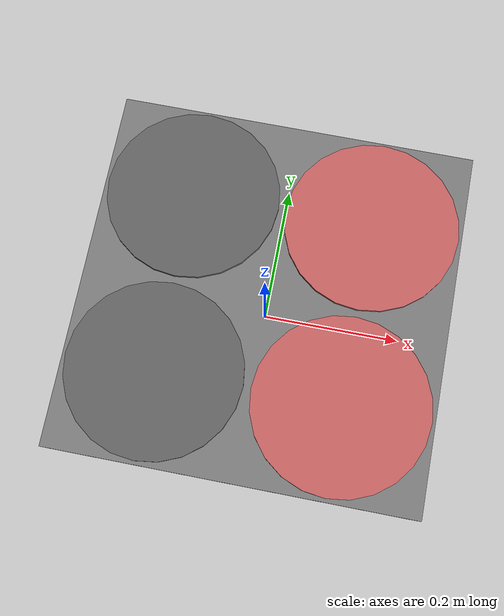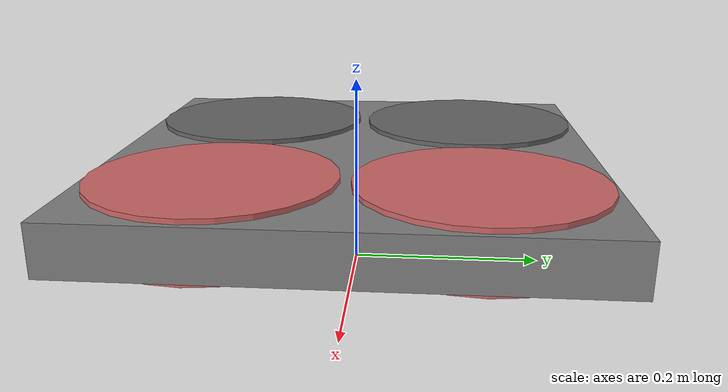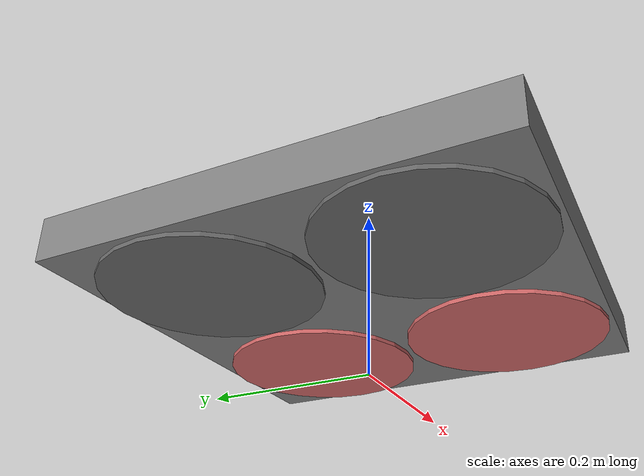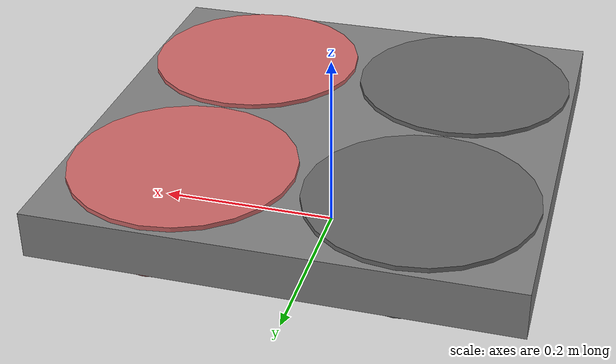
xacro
<?xml version="1.0"?>
  <robot name="drone" xmlns:xacro="http://www.ros.org/wiki/xacro">

  <xacro:include filename="$(find brl_drones)/urdf/drone_base.urdf.xacro" />

  <link name="base_link" />

  <xacro:drone_base prefix="drone1_" base_link_name="base_link" />

  <xacro:drone_base prefix="drone2_" base_link_name="base_link" />

  <xacro:drone_base prefix="drone3_" base_link_name="base_link" />

</robot>

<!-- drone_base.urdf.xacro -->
<robot xmlns:xacro="http://www.ros.org/wiki/xacro">

  <xacro:macro name="drone_base" params="prefix base_link_name">

    <link name="${prefix}x" />

    <link name="${prefix}xy" />

    <link name="${prefix}xyz" />

    <link name="${prefix}hull">
      <visual>
        <geometry>
          <box size="0.5 0.5 0.05"/>
        </geometry>
        <origin xyz="0 0 0.1"/>
        <material name="${prefix}hull_color">
          <color rgba="0.5 0.5 0.5 1"/>
        </material>
      </visual>
      <collision>
        <geometry>
          <box size="0.5 0.5 0.2"/>
        </geometry>
        <origin xyz="0 0 0.1"/>
      </collision>
    </link>

    <joint name="${prefix}move_x" type="prismatic" >
      <parent link="${base_link_name}" />
      <child link="${prefix}x" />
      <axis xyz="1 0 0" />
      <limit lower="0" upper="2" effort="100" velocity="100" />
    </joint>

    <joint name="${prefix}move_y" type="prismatic" >
      <parent link="${prefix}x" />
      <child link="${prefix}xy" />
      <axis xyz="0 1 0" />
      <limit lower="0" upper="2" effort="100" velocity="100" />
    </joint>

    <joint name="${prefix}move_z" type="prismatic" >
      <parent link="${prefix}xy" />
      <child link="${prefix}xyz" />
      <axis xyz="0 0 1" />
      <limit lower="0" upper="2" effort="100" velocity="100" />
    </joint>

    <joint name="${prefix}turn_z" type="revolute" >
      <parent link="${prefix}xyz" />
      <child link="${prefix}hull" />
      <axis xyz="0 0 1" />
      <limit lower="-3.141" upper="3.141" effort="100" velocity="100" />
    </joint>

  <link name="${prefix}fr_rotor">
    <visual>
      <geometry>
        <cylinder radius="0.12" length="0.06"/>
      </geometry>
      <origin xyz="0.125 0.125 0.1"/>
      <material name="${prefix}front_rotor_color">
        <color rgba="0.8 0.4 0.4 1"/>
      </material>
    </visual>
  </link>
  <joint name="${prefix}fr_rotor_joint" type="fixed">
    <parent link="${prefix}hull"/>
    <child link="${prefix}fr_rotor"/>
  </joint>

  <link name="${prefix}fl_rotor">
    <visual>
      <geometry>
        <cylinder radius="0.12" length="0.06"/>
      </geometry>
      <origin xyz="0.125 -0.125 0.1"/>
      <material name="${prefix}front_rotor_color"/>
    </visual>
  </link>
  <joint name="${prefix}fl_rotor_joint" type="fixed">
    <parent link="${prefix}hull"/>
    <child link="${prefix}fl_rotor"/>
  </joint>

  <link name="${prefix}br_rotor">
    <visual>
      <geometry>
        <cylinder radius="0.12" length="0.06"/>
      </geometry>
      <origin xyz="-0.125 0.125 0.1"/>
      <material name="${prefix}back_rotor_color">
        <color rgba="0.4 0.4 0.4 1"/>
      </material>
    </visual>
  </link>
  <joint name="${prefix}br_rotor_joint" type="fixed">
    <parent link="${prefix}hull"/>
    <child link="${prefix}br_rotor"/>
  </joint>

  <link name="${prefix}bl_rotor">
    <visual>
      <geometry>
        <cylinder radius="0.12" length="0.06"/>
      </geometry>
      <origin xyz="-0.125 -0.125 0.1"/>
      <material name="${prefix}back_rotor_color"/>
    </visual>
  </link>
  <joint name="${prefix}bl_rotor_joint" type="fixed">
    <parent link="${prefix}hull"/>
    <child link="${prefix}bl_rotor"/>
  </joint>

  </xacro:macro>

</robot>
